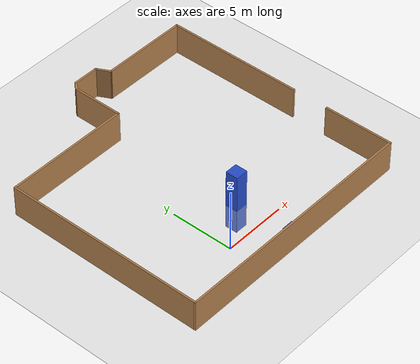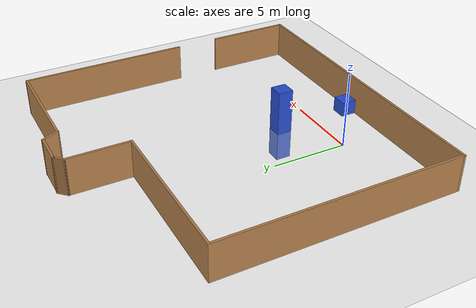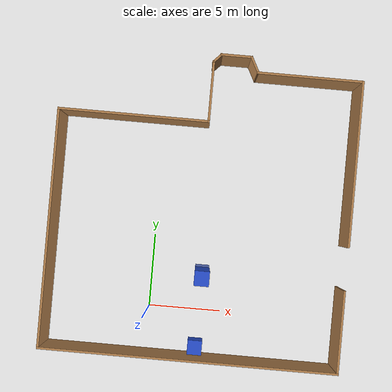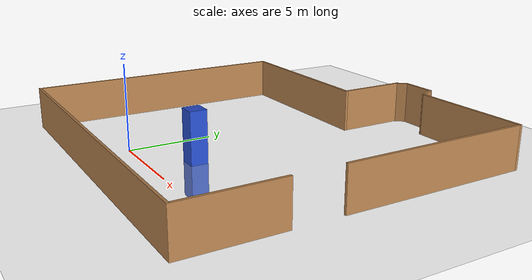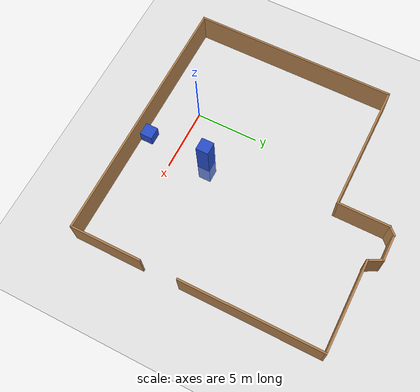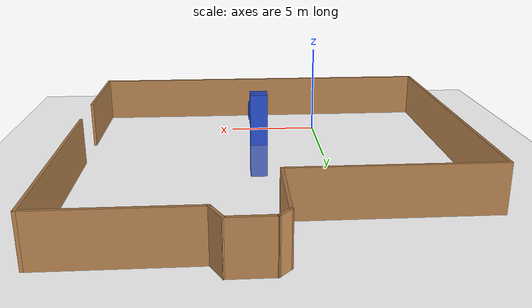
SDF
<sdf version="1.7">
 <world name="default">
  <light name="sun" type="directional">
   <pose>0 0 10 0 -0 0</pose>
   <diffuse>0.8 0.8 0.8 1</diffuse>
   <specular>0.2 0.2 0.2 1</specular>
   <attenuation>
    <range>1000</range>
    <constant>0.9</constant>
    <linear>0.01</linear>
    <quadratic>0.001</quadratic>
   </attenuation>
   <direction>-0.5 0.1 -0.9</direction>
   <spot><inner_angle>0</inner_angle><outer_angle>0</outer_angle><falloff>0</falloff></spot>
  </light>
  <model name="ground_plane">
   <static>1</static>
   <link name="link">
    <collision name="collision">
     <geometry><plane><normal>0 0 1</normal><size>100 100</size></plane></geometry>
     <surface>
      <contact><collide_bitmask>65535</collide_bitmask></contact>
      <friction><ode><mu>100</mu><mu2>50</mu2></ode></friction>
     </surface>
    </collision>
    <visual name="visual">
     <cast_shadows>0</cast_shadows>
     <geometry><plane><normal>0 0 1</normal><size>100 100</size></plane></geometry>
     <material>
      <script><uri>file://media/materials/scripts/gazebo.material</uri><name>Gazebo/Grey</name></script>
     </material>
    </visual>
   </link>
  </model>
  <gravity>0 0 -9.8</gravity>
  <magnetic_field>6e-06 2.3e-05 -4.2e-05</magnetic_field>
  <atmosphere type="adiabatic"/>
  <physics type="ode">
   <max_step_size>0.001</max_step_size>
   <real_time_factor>1</real_time_factor>
   <real_time_update_rate>1000</real_time_update_rate>
  </physics>
  <scene><ambient>0.4 0.4 0.4 1</ambient><background>0.7 0.7 0.7 1</background><shadows>1</shadows></scene>
  <spherical_coordinates>
   <surface_model>EARTH_WGS84</surface_model>
   <latitude_deg>0</latitude_deg>
   <longitude_deg>0</longitude_deg>
   <elevation>0</elevation>
   <heading_deg>0</heading_deg>
  </spherical_coordinates>
  <model name="unit_box">
   <static>true</static>
   <link name="link">
    <inertial>
     <mass>1</mass>
     <inertia>
      <ixx>0.166667</ixx>
      <ixy>0</ixy>
      <ixz>0</ixz>
      <iyy>0.166667</iyy>
      <iyz>0</iyz>
      <izz>0.166667</izz>
     </inertia>
    </inertial>
    <visual name="visual">
     <geometry><box><size>1 1 1</size></box></geometry>
     <material>
      <script><name>Gazebo/Blue</name><uri>file://media/materials/scripts/gazebo.material</uri></script>
      <shader type="pixel"><normal_map>__default__</normal_map></shader>
      <ambient>0.3 0.3 0.3 1</ambient>
      <diffuse>0.7 0.7 0.7 1</diffuse>
      <specular>0.01 0.01 0.01 1</specular>
      <emissive>0 0 0 1</emissive>
     </material>
    </visual>
    <collision name="collision">
     <geometry><box><size>1 1 1</size></box></geometry>
     <surface>
      <friction>
       <ode><mu>1</mu><mu2>1</mu2><fdir1>0 0 0</fdir1><slip1>0</slip1><slip2>0</slip2></ode>
       <torsional>
        <coefficient>1</coefficient>
        <patch_radius>0</patch_radius>
        <surface_radius>0</surface_radius>
        <use_patch_radius>1</use_patch_radius>
        <ode><slip>0</slip></ode>
       </torsional>
      </friction>
      <bounce><restitution_coefficient>0</restitution_coefficient><threshold>1e+06</threshold></bounce>
      <contact>
       <collide_without_contact>0</collide_without_contact>
       <collide_without_contact_bitmask>1</collide_without_contact_bitmask>
       <collide_bitmask>1</collide_bitmask>
       <ode>
        <soft_cfm>0</soft_cfm>
        <soft_erp>0.2</soft_erp>
        <kp>1e+13</kp>
        <kd>1</kd>
        <max_vel>0.01</max_vel>
        <min_depth>0</min_depth>
       </ode>
       <bullet>
        <split_impulse>1</split_impulse>
        <split_impulse_penetration_threshold>-0.01</split_impulse_penetration_threshold>
        <soft_cfm>0</soft_cfm>
        <soft_erp>0.2</soft_erp>
        <kp>1e+13</kp>
        <kd>1</kd>
       </bullet>
      </contact>
     </surface>
    </collision>
   </link>
   <static>0</static>
   <pose>3.44048 -2.5099 0.5 0 -0 0</pose>
  </model>
  <model name="pillar">
   <static>true</static>
   <link name="link">
    <inertial>
     <mass>1</mass>
     <inertia>
      <ixx>0.166667</ixx>
      <ixy>0</ixy>
      <ixz>0</ixz>
      <iyy>0.166667</iyy>
      <iyz>0</iyz>
      <izz>0.166667</izz>
     </inertia>
    </inertial>
    <pose>1.01667 -0 0 0 -0 0</pose>
    <visual name="visual">
     <geometry><box><size>1 1 5</size></box></geometry>
     <material>
      <script><name>Gazebo/Blue</name><uri>file://media/materials/scripts/gazebo.material</uri></script>
      <shader type="pixel"><normal_map>__default__</normal_map></shader>
      <ambient>0.2 0.3 0.8 1</ambient>
      <diffuse>0.7 0.7 0.7 1</diffuse>
      <specular>0.01 0.01 0.01 1</specular>
      <emissive>0 0 0 1</emissive>
     </material>
    </visual>
    <collision name="collision">
     <geometry><box><size>1 1 1</size></box></geometry>
     <surface>
      <friction>
       <ode><mu>1</mu><mu2>1</mu2><fdir1>0 0 0</fdir1><slip1>0</slip1><slip2>0</slip2></ode>
       <torsional>
        <coefficient>1</coefficient>
        <patch_radius>0</patch_radius>
        <surface_radius>0</surface_radius>
        <use_patch_radius>1</use_patch_radius>
        <ode><slip>0</slip></ode>
       </torsional>
      </friction>
      <bounce><restitution_coefficient>0</restitution_coefficient><threshold>1e+06</threshold></bounce>
      <contact>
       <collide_without_contact>0</collide_without_contact>
       <collide_without_contact_bitmask>1</collide_without_contact_bitmask>
       <collide_bitmask>1</collide_bitmask>
       <ode>
        <soft_cfm>0</soft_cfm>
        <soft_erp>0.2</soft_erp>
        <kp>1e+13</kp>
        <kd>1</kd>
        <max_vel>0.01</max_vel>
        <min_depth>0</min_depth>
       </ode>
       <bullet>
        <split_impulse>1</split_impulse>
        <split_impulse_penetration_threshold>-0.01</split_impulse_penetration_threshold>
        <soft_cfm>0</soft_cfm>
        <soft_erp>0.2</soft_erp>
        <kp>1e+13</kp>
        <kd>1</kd>
       </bullet>
      </contact>
     </surface>
    </collision>
   </link>
   <static>0</static>
   <pose>2.4874 2.50424 0.5 0 -0 0</pose>
  </model>
  <model name="b1_closed">
   <link name="Wall_20">
    <pose>9.99979 -7.50998 0 0 -0 1.5708</pose>
    <inertial>
     <mass>1</mass>
     <inertia><ixx>1</ixx><ixy>0</ixy><ixz>0</ixz><iyy>1</iyy><iyz>0</iyz><izz>1</izz></inertia>
    </inertial>
    <visual name="Wall_20_Visual">
     <pose>0 0 1.25 0 -0 0</pose>
     <geometry><box><size>5.65 0.15 2.5</size></box></geometry>
     <material>
      <script><uri>file://media/materials/scripts/gazebo.material</uri><name>Gazebo/Wood</name></script>
      <ambient>1 1 1 1</ambient>
      <shader type="pixel"><normal_map>__default__</normal_map></shader>
      <diffuse>1 1 1 1</diffuse>
      <specular>0.2 0.2 0.2 1</specular>
      <emissive>0 0 0 1</emissive>
     </material>
     <meta><layer>0</layer></meta>
    </visual>
    <collision name="Wall_20_Collision">
     <pose>0 0 1.25 0 -0 0</pose>
     <geometry><box><size>5.65 0.15 2.5</size></box></geometry>
     <surface>
      <friction>
       <ode><mu>1</mu><mu2>1</mu2><fdir1>0 0 0</fdir1><slip1>0</slip1><slip2>0</slip2></ode>
       <torsional>
        <coefficient>1</coefficient>
        <patch_radius>0</patch_radius>
        <surface_radius>0</surface_radius>
        <use_patch_radius>1</use_patch_radius>
        <ode><slip>0</slip></ode>
       </torsional>
      </friction>
      <bounce><restitution_coefficient>0</restitution_coefficient><threshold>1e+06</threshold></bounce>
      <contact>
       <collide_without_contact>0</collide_without_contact>
       <collide_without_contact_bitmask>1</collide_without_contact_bitmask>
       <collide_bitmask>1</collide_bitmask>
       <ode>
        <soft_cfm>0</soft_cfm>
        <soft_erp>0.2</soft_erp>
        <kp>1e+13</kp>
        <kd>1</kd>
        <max_vel>0.01</max_vel>
        <min_depth>0</min_depth>
       </ode>
       <bullet>
        <split_impulse>1</split_impulse>
        <split_impulse_penetration_threshold>-0.01</split_impulse_penetration_threshold>
        <soft_cfm>0</soft_cfm>
        <soft_erp>0.2</soft_erp>
        <kp>1e+13</kp>
        <kd>1</kd>
       </bullet>
      </contact>
     </surface>
    </collision>
   </link>
   <link name="Wall_23">
    <pose>10.0002 3.73994 0 0 -0 1.5708</pose>
    <inertial>
     <mass>1</mass>
     <inertia><ixx>1</ixx><ixy>0</ixy><ixz>0</ixz><iyy>1</iyy><iyz>0</iyz><izz>1</izz></inertia>
    </inertial>
    <visual name="Wall_23_Visual">
     <pose>0 0 1.25 0 -0 0</pose>
     <geometry><box><size>11.15 0.15 2.5</size></box></geometry>
     <material>
      <script><uri>file://media/materials/scripts/gazebo.material</uri><name>Gazebo/Wood</name></script>
      <ambient>1 1 1 1</ambient>
      <shader type="pixel"><normal_map>__default__</normal_map></shader>
      <diffuse>1 1 1 1</diffuse>
      <specular>0.2 0.2 0.2 1</specular>
      <emissive>0 0 0 1</emissive>
     </material>
     <meta><layer>0</layer></meta>
    </visual>
    <collision name="Wall_23_Collision">
     <pose>0 0 1.25 0 -0 0</pose>
     <geometry><box><size>11.15 0.15 2.5</size></box></geometry>
     <surface>
      <friction>
       <ode><mu>1</mu><mu2>1</mu2><fdir1>0 0 0</fdir1><slip1>0</slip1><slip2>0</slip2></ode>
       <torsional>
        <coefficient>1</coefficient>
        <patch_radius>0</patch_radius>
        <surface_radius>0</surface_radius>
        <use_patch_radius>1</use_patch_radius>
        <ode><slip>0</slip></ode>
       </torsional>
      </friction>
      <bounce><restitution_coefficient>0</restitution_coefficient><threshold>1e+06</threshold></bounce>
      <contact>
       <collide_without_contact>0</collide_without_contact>
       <collide_without_contact_bitmask>1</collide_without_contact_bitmask>
       <collide_bitmask>1</collide_bitmask>
       <ode>
        <soft_cfm>0</soft_cfm>
        <soft_erp>0.2</soft_erp>
        <kp>1e+13</kp>
        <kd>1</kd>
        <max_vel>0.01</max_vel>
        <min_depth>0</min_depth>
       </ode>
       <bullet>
        <split_impulse>1</split_impulse>
        <split_impulse_penetration_threshold>-0.01</split_impulse_penetration_threshold>
        <soft_cfm>0</soft_cfm>
        <soft_erp>0.2</soft_erp>
        <kp>1e+13</kp>
        <kd>1</kd>
       </bullet>
      </contact>
     </surface>
    </collision>
   </link>
   <link name="Wall_38">
    <pose>6.50021 9.23994 0 0 -0 3.14159</pose>
    <inertial>
     <mass>1</mass>
     <inertia><ixx>1</ixx><ixy>0</ixy><ixz>0</ixz><iyy>1</iyy><iyz>0</iyz><izz>1</izz></inertia>
    </inertial>
    <visual name="Wall_38_Visual">
     <pose>0 0 1.25 0 -0 0</pose>
     <geometry><box><size>7.15 0.15 2.5</size></box></geometry>
     <material>
      <script><uri>file://media/materials/scripts/gazebo.material</uri><name>Gazebo/Wood</name></script>
      <ambient>1 1 1 1</ambient>
      <shader type="pixel"><normal_map>__default__</normal_map></shader>
      <diffuse>1 1 1 1</diffuse>
      <specular>0.2 0.2 0.2 1</specular>
      <emissive>0 0 0 1</emissive>
     </material>
     <meta><layer>0</layer></meta>
    </visual>
    <collision name="Wall_38_Collision">
     <pose>0 0 1.25 0 -0 0</pose>
     <geometry><box><size>7.15 0.15 2.5</size></box></geometry>
     <surface>
      <friction>
       <ode><mu>1</mu><mu2>1</mu2><fdir1>0 0 0</fdir1><slip1>0</slip1><slip2>0</slip2></ode>
       <torsional>
        <coefficient>1</coefficient>
        <patch_radius>0</patch_radius>
        <surface_radius>0</surface_radius>
        <use_patch_radius>1</use_patch_radius>
        <ode><slip>0</slip></ode>
       </torsional>
      </friction>
      <bounce><restitution_coefficient>0</restitution_coefficient><threshold>1e+06</threshold></bounce>
      <contact>
       <collide_without_contact>0</collide_without_contact>
       <collide_without_contact_bitmask>1</collide_without_contact_bitmask>
       <collide_bitmask>1</collide_bitmask>
       <ode>
        <soft_cfm>0</soft_cfm>
        <soft_erp>0.2</soft_erp>
        <kp>1e+13</kp>
        <kd>1</kd>
        <max_vel>0.01</max_vel>
        <min_depth>0</min_depth>
       </ode>
       <bullet>
        <split_impulse>1</split_impulse>
        <split_impulse_penetration_threshold>-0.01</split_impulse_penetration_threshold>
        <soft_cfm>0</soft_cfm>
        <soft_erp>0.2</soft_erp>
        <kp>1e+13</kp>
        <kd>1</kd>
       </bullet>
      </contact>
     </surface>
    </collision>
   </link>
   <link name="Wall_40">
    <pose>2.73971 9.73444 0 0 -0 2.05565</pose>
    <inertial>
     <mass>1</mass>
     <inertia><ixx>1</ixx><ixy>0</ixy><ixz>0</ixz><iyy>1</iyy><iyz>0</iyz><izz>1</izz></inertia>
    </inertial>
    <visual name="Wall_40_Visual">
     <pose>0 0 1.25 0 -0 0</pose>
     <geometry><box><size>1.268 0.15 2.5</size></box></geometry>
     <material>
      <script><uri>file://media/materials/scripts/gazebo.material</uri><name>Gazebo/Wood</name></script>
      <ambient>1 1 1 1</ambient>
      <shader type="pixel"><normal_map>__default__</normal_map></shader>
      <diffuse>1 1 1 1</diffuse>
      <specular>0.2 0.2 0.2 1</specular>
      <emissive>0 0 0 1</emissive>
     </material>
     <meta><layer>0</layer></meta>
    </visual>
    <collision name="Wall_40_Collision">
     <pose>0 0 1.25 0 -0 0</pose>
     <geometry><box><size>1.268 0.15 2.5</size></box></geometry>
     <surface>
      <friction>
       <ode><mu>1</mu><mu2>1</mu2><fdir1>0 0 0</fdir1><slip1>0</slip1><slip2>0</slip2></ode>
       <torsional>
        <coefficient>1</coefficient>
        <patch_radius>0</patch_radius>
        <surface_radius>0</surface_radius>
        <use_patch_radius>1</use_patch_radius>
        <ode><slip>0</slip></ode>
       </torsional>
      </friction>
      <bounce><restitution_coefficient>0</restitution_coefficient><threshold>1e+06</threshold></bounce>
      <contact>
       <collide_without_contact>0</collide_without_contact>
       <collide_without_contact_bitmask>1</collide_without_contact_bitmask>
       <collide_bitmask>1</collide_bitmask>
       <ode>
        <soft_cfm>0</soft_cfm>
        <soft_erp>0.2</soft_erp>
        <kp>1e+13</kp>
        <kd>1</kd>
        <max_vel>0.01</max_vel>
        <min_depth>0</min_depth>
       </ode>
       <bullet>
        <split_impulse>1</split_impulse>
        <split_impulse_penetration_threshold>-0.01</split_impulse_penetration_threshold>
        <soft_cfm>0</soft_cfm>
        <soft_erp>0.2</soft_erp>
        <kp>1e+13</kp>
        <kd>1</kd>
       </bullet>
      </contact>
     </surface>
    </collision>
   </link>
   <link name="Wall_42">
    <pose>1.47921 10.2289 0 0 -0 3.14159</pose>
    <inertial>
     <mass>1</mass>
     <inertia><ixx>1</ixx><ixy>0</ixy><ixz>0</ixz><iyy>1</iyy><iyz>0</iyz><izz>1</izz></inertia>
    </inertial>
    <visual name="Wall_42_Visual">
     <pose>0 0 1.25 0 -0 0</pose>
     <geometry><box><size>2.15 0.15 2.5</size></box></geometry>
     <material>
      <script><uri>file://media/materials/scripts/gazebo.material</uri><name>Gazebo/Wood</name></script>
      <ambient>1 1 1 1</ambient>
      <shader type="pixel"><normal_map>__default__</normal_map></shader>
      <diffuse>1 1 1 1</diffuse>
      <specular>0.2 0.2 0.2 1</specular>
      <emissive>0 0 0 1</emissive>
     </material>
     <meta><layer>0</layer></meta>
    </visual>
    <collision name="Wall_42_Collision">
     <pose>0 0 1.25 0 -0 0</pose>
     <geometry><box><size>2.15 0.15 2.5</size></box></geometry>
     <surface>
      <friction>
       <ode><mu>1</mu><mu2>1</mu2><fdir1>0 0 0</fdir1><slip1>0</slip1><slip2>0</slip2></ode>
       <torsional>
        <coefficient>1</coefficient>
        <patch_radius>0</patch_radius>
        <surface_radius>0</surface_radius>
        <use_patch_radius>1</use_patch_radius>
        <ode><slip>0</slip></ode>
       </torsional>
      </friction>
      <bounce><restitution_coefficient>0</restitution_coefficient><threshold>1e+06</threshold></bounce>
      <contact>
       <collide_without_contact>0</collide_without_contact>
       <collide_without_contact_bitmask>1</collide_without_contact_bitmask>
       <collide_bitmask>1</collide_bitmask>
       <ode>
        <soft_cfm>0</soft_cfm>
        <soft_erp>0.2</soft_erp>
        <kp>1e+13</kp>
        <kd>1</kd>
        <max_vel>0.01</max_vel>
        <min_depth>0</min_depth>
       </ode>
       <bullet>
        <split_impulse>1</split_impulse>
        <split_impulse_penetration_threshold>-0.01</split_impulse_penetration_threshold>
        <soft_cfm>0</soft_cfm>
        <soft_erp>0.2</soft_erp>
        <kp>1e+13</kp>
        <kd>1</kd>
       </bullet>
      </contact>
     </surface>
    </collision>
   </link>
   <link name="Wall_59">
    <pose>0.239712 9.97894 0 0 0 -2.33475</pose>
    <inertial>
     <mass>1</mass>
     <inertia><ixx>1</ixx><ixy>0</ixy><ixz>0</ixz><iyy>1</iyy><iyz>0</iyz><izz>1</izz></inertia>
    </inertial>
    <visual name="Wall_59_Visual">
     <pose>0 0 1.25 0 -0 0</pose>
     <geometry><box><size>0.842417 0.15 2.5</size></box></geometry>
     <material>
      <script><uri>file://media/materials/scripts/gazebo.material</uri><name>Gazebo/Wood</name></script>
      <ambient>1 1 1 1</ambient>
      <shader type="pixel"><normal_map>__default__</normal_map></shader>
      <diffuse>1 1 1 1</diffuse>
      <specular>0.2 0.2 0.2 1</specular>
      <emissive>0 0 0 1</emissive>
     </material>
     <meta><layer>0</layer></meta>
    </visual>
    <collision name="Wall_59_Collision">
     <pose>0 0 1.25 0 -0 0</pose>
     <geometry><box><size>0.842417 0.15 2.5</size></box></geometry>
     <surface>
      <friction>
       <ode><mu>1</mu><mu2>1</mu2><fdir1>0 0 0</fdir1><slip1>0</slip1><slip2>0</slip2></ode>
       <torsional>
        <coefficient>1</coefficient>
        <patch_radius>0</patch_radius>
        <surface_radius>0</surface_radius>
        <use_patch_radius>1</use_patch_radius>
        <ode><slip>0</slip></ode>
       </torsional>
      </friction>
      <bounce><restitution_coefficient>0</restitution_coefficient><threshold>1e+06</threshold></bounce>
      <contact>
       <collide_without_contact>0</collide_without_contact>
       <collide_without_contact_bitmask>1</collide_without_contact_bitmask>
       <collide_bitmask>1</collide_bitmask>
       <ode>
        <soft_cfm>0</soft_cfm>
        <soft_erp>0.2</soft_erp>
        <kp>1e+13</kp>
        <kd>1</kd>
        <max_vel>0.01</max_vel>
        <min_depth>0</min_depth>
       </ode>
       <bullet>
        <split_impulse>1</split_impulse>
        <split_impulse_penetration_threshold>-0.01</split_impulse_penetration_threshold>
        <soft_cfm>0</soft_cfm>
        <soft_erp>0.2</soft_erp>
        <kp>1e+13</kp>
        <kd>1</kd>
       </bullet>
      </contact>
     </surface>
    </collision>
   </link>
   <link name="Wall_6">
    <pose>-0.000209 -10.26 0 0 -0 0</pose>
    <inertial>
     <mass>1</mass>
     <inertia><ixx>1</ixx><ixy>0</ixy><ixz>0</ixz><iyy>1</iyy><iyz>0</iyz><izz>1</izz></inertia>
    </inertial>
    <visual name="Wall_6_Visual">
     <pose>0 0 1.25 0 -0 0</pose>
     <geometry><box><size>20.15 0.15 2.5</size></box></geometry>
     <material>
      <script><uri>file://media/materials/scripts/gazebo.material</uri><name>Gazebo/Wood</name></script>
      <ambient>1 1 1 1</ambient>
      <shader type="pixel"><normal_map>__default__</normal_map></shader>
      <diffuse>1 1 1 1</diffuse>
      <specular>0.2 0.2 0.2 1</specular>
      <emissive>0 0 0 1</emissive>
     </material>
     <meta><layer>0</layer></meta>
    </visual>
    <collision name="Wall_6_Collision">
     <pose>0 0 1.25 0 -0 0</pose>
     <geometry><box><size>20.15 0.15 2.5</size></box></geometry>
     <surface>
      <friction>
       <ode><mu>1</mu><mu2>1</mu2><fdir1>0 0 0</fdir1><slip1>0</slip1><slip2>0</slip2></ode>
       <torsional>
        <coefficient>1</coefficient>
        <patch_radius>0</patch_radius>
        <surface_radius>0</surface_radius>
        <use_patch_radius>1</use_patch_radius>
        <ode><slip>0</slip></ode>
       </torsional>
      </friction>
      <bounce><restitution_coefficient>0</restitution_coefficient><threshold>1e+06</threshold></bounce>
      <contact>
       <collide_without_contact>0</collide_without_contact>
       <collide_without_contact_bitmask>1</collide_without_contact_bitmask>
       <collide_bitmask>1</collide_bitmask>
       <ode>
        <soft_cfm>0</soft_cfm>
        <soft_erp>0.2</soft_erp>
        <kp>1e+13</kp>
        <kd>1</kd>
        <max_vel>0.01</max_vel>
        <min_depth>0</min_depth>
       </ode>
       <bullet>
        <split_impulse>1</split_impulse>
        <split_impulse_penetration_threshold>-0.01</split_impulse_penetration_threshold>
        <soft_cfm>0</soft_cfm>
        <soft_erp>0.2</soft_erp>
        <kp>1e+13</kp>
        <kd>1</kd>
       </bullet>
      </contact>
     </surface>
    </collision>
   </link>
   <link name="Wall_61">
    <pose>0.000211 7.72894 0 0 0 -1.5708</pose>
    <inertial>
     <mass>1</mass>
     <inertia><ixx>1</ixx><ixy>0</ixy><ixz>0</ixz><iyy>1</iyy><iyz>0</iyz><izz>1</izz></inertia>
    </inertial>
    <visual name="Wall_61_Visual">
     <pose>0 0 1.25 0 -0 0</pose>
     <geometry><box><size>4.15 0.15 2.5</size></box></geometry>
     <material>
      <script><uri>file://media/materials/scripts/gazebo.material</uri><name>Gazebo/Wood</name></script>
      <ambient>1 1 1 1</ambient>
      <shader type="pixel"><normal_map>__default__</normal_map></shader>
      <diffuse>1 1 1 1</diffuse>
      <specular>0.2 0.2 0.2 1</specular>
      <emissive>0 0 0 1</emissive>
     </material>
     <meta><layer>0</layer></meta>
    </visual>
    <collision name="Wall_61_Collision">
     <pose>0 0 1.25 0 -0 0</pose>
     <geometry><box><size>4.15 0.15 2.5</size></box></geometry>
     <surface>
      <friction>
       <ode><mu>1</mu><mu2>1</mu2><fdir1>0 0 0</fdir1><slip1>0</slip1><slip2>0</slip2></ode>
       <torsional>
        <coefficient>1</coefficient>
        <patch_radius>0</patch_radius>
        <surface_radius>0</surface_radius>
        <use_patch_radius>1</use_patch_radius>
        <ode><slip>0</slip></ode>
       </torsional>
      </friction>
      <bounce><restitution_coefficient>0</restitution_coefficient><threshold>1e+06</threshold></bounce>
      <contact>
       <collide_without_contact>0</collide_without_contact>
       <collide_without_contact_bitmask>1</collide_without_contact_bitmask>
       <collide_bitmask>1</collide_bitmask>
       <ode>
        <soft_cfm>0</soft_cfm>
        <soft_erp>0.2</soft_erp>
        <kp>1e+13</kp>
        <kd>1</kd>
        <max_vel>0.01</max_vel>
        <min_depth>0</min_depth>
       </ode>
       <bullet>
        <split_impulse>1</split_impulse>
        <split_impulse_penetration_threshold>-0.01</split_impulse_penetration_threshold>
        <soft_cfm>0</soft_cfm>
        <soft_erp>0.2</soft_erp>
        <kp>1e+13</kp>
        <kd>1</kd>
       </bullet>
      </contact>
     </surface>
    </collision>
   </link>
   <link name="Wall_65">
    <pose>-4.99979 5.72894 0 0 -0 3.14159</pose>
    <inertial>
     <mass>1</mass>
     <inertia><ixx>1</ixx><ixy>0</ixy><ixz>0</ixz><iyy>1</iyy><iyz>0</iyz><izz>1</izz></inertia>
    </inertial>
    <visual name="Wall_65_Visual">
     <pose>0 0 1.25 0 -0 0</pose>
     <geometry><box><size>10.15 0.15 2.5</size></box></geometry>
     <material>
      <script><uri>file://media/materials/scripts/gazebo.material</uri><name>Gazebo/Wood</name></script>
      <ambient>1 1 1 1</ambient>
      <shader type="pixel"><normal_map>__default__</normal_map></shader>
      <diffuse>0.7 0.7 0.7 1</diffuse>
      <specular>0.01 0.01 0.01 1</specular>
      <emissive>0 0 0 1</emissive>
     </material>
     <meta><layer>0</layer></meta>
    </visual>
    <collision name="Wall_65_Collision">
     <pose>0 0 1.25 0 -0 0</pose>
     <geometry><box><size>10.15 0.15 2.5</size></box></geometry>
     <surface>
      <friction>
       <ode><mu>1</mu><mu2>1</mu2><fdir1>0 0 0</fdir1><slip1>0</slip1><slip2>0</slip2></ode>
       <torsional>
        <coefficient>1</coefficient>
        <patch_radius>0</patch_radius>
        <surface_radius>0</surface_radius>
        <use_patch_radius>1</use_patch_radius>
        <ode><slip>0</slip></ode>
       </torsional>
      </friction>
      <bounce><restitution_coefficient>0</restitution_coefficient><threshold>1e+06</threshold></bounce>
      <contact>
       <collide_without_contact>0</collide_without_contact>
       <collide_without_contact_bitmask>1</collide_without_contact_bitmask>
       <collide_bitmask>1</collide_bitmask>
       <ode>
        <soft_cfm>0</soft_cfm>
        <soft_erp>0.2</soft_erp>
        <kp>1e+13</kp>
        <kd>1</kd>
        <max_vel>0.01</max_vel>
        <min_depth>0</min_depth>
       </ode>
       <bullet>
        <split_impulse>1</split_impulse>
        <split_impulse_penetration_threshold>-0.01</split_impulse_penetration_threshold>
        <soft_cfm>0</soft_cfm>
        <soft_erp>0.2</soft_erp>
        <kp>1e+13</kp>
        <kd>1</kd>
       </bullet>
      </contact>
     </surface>
    </collision>
   </link>
   <link name="Wall_67">
    <pose>-10 -2.26552 0 0 0 -1.57082</pose>
    <inertial>
     <mass>1</mass>
     <inertia><ixx>1</ixx><ixy>0</ixy><ixz>0</ixz><iyy>1</iyy><iyz>0</iyz><izz>1</izz></inertia>
    </inertial>
    <visual name="Wall_67_Visual">
     <pose>0 0 1.25 0 -0 0</pose>
     <geometry><box><size>16.1389 0.15 2.5</size></box></geometry>
     <material>
      <script><uri>file://media/materials/scripts/gazebo.material</uri><name>Gazebo/Wood</name></script>
      <ambient>1 1 1 1</ambient>
      <shader type="pixel"><normal_map>__default__</normal_map></shader>
      <diffuse>1 1 1 1</diffuse>
      <specular>0.2 0.2 0.2 1</specular>
      <emissive>0 0 0 1</emissive>
     </material>
     <meta><layer>0</layer></meta>
    </visual>
    <collision name="Wall_67_Collision">
     <pose>0 0 1.25 0 -0 0</pose>
     <geometry><box><size>16.1389 0.15 2.5</size></box></geometry>
     <surface>
      <friction>
       <ode><mu>1</mu><mu2>1</mu2><fdir1>0 0 0</fdir1><slip1>0</slip1><slip2>0</slip2></ode>
       <torsional>
        <coefficient>1</coefficient>
        <patch_radius>0</patch_radius>
        <surface_radius>0</surface_radius>
        <use_patch_radius>1</use_patch_radius>
        <ode><slip>0</slip></ode>
       </torsional>
      </friction>
      <bounce><restitution_coefficient>0</restitution_coefficient><threshold>1e+06</threshold></bounce>
      <contact>
       <collide_without_contact>0</collide_without_contact>
       <collide_without_contact_bitmask>1</collide_without_contact_bitmask>
       <collide_bitmask>1</collide_bitmask>
       <ode>
        <soft_cfm>0</soft_cfm>
        <soft_erp>0.2</soft_erp>
        <kp>1e+13</kp>
        <kd>1</kd>
        <max_vel>0.01</max_vel>
        <min_depth>0</min_depth>
       </ode>
       <bullet>
        <split_impulse>1</split_impulse>
        <split_impulse_penetration_threshold>-0.01</split_impulse_penetration_threshold>
        <soft_cfm>0</soft_cfm>
        <soft_erp>0.2</soft_erp>
        <kp>1e+13</kp>
        <kd>1</kd>
       </bullet>
      </contact>
     </surface>
    </collision>
   </link>
   <static>1</static>
   <pose>3.03981 7.16893 0 0 -0 0</pose>
  </model>
  <plugin name="gazebo_occupancy_map" filename="libgazebo_2Dmap_plugin.so">
   <map_resolution>0.1</map_resolution>
   <map_height>0.4310286998878532</map_height>
   <map_size_x>40</map_size_x>
   <map_size_y>40</map_size_y>
   <init_robot_x>0</init_robot_x>
   <init_robot_y>0</init_robot_y>
  </plugin>
 </world>
</sdf>
